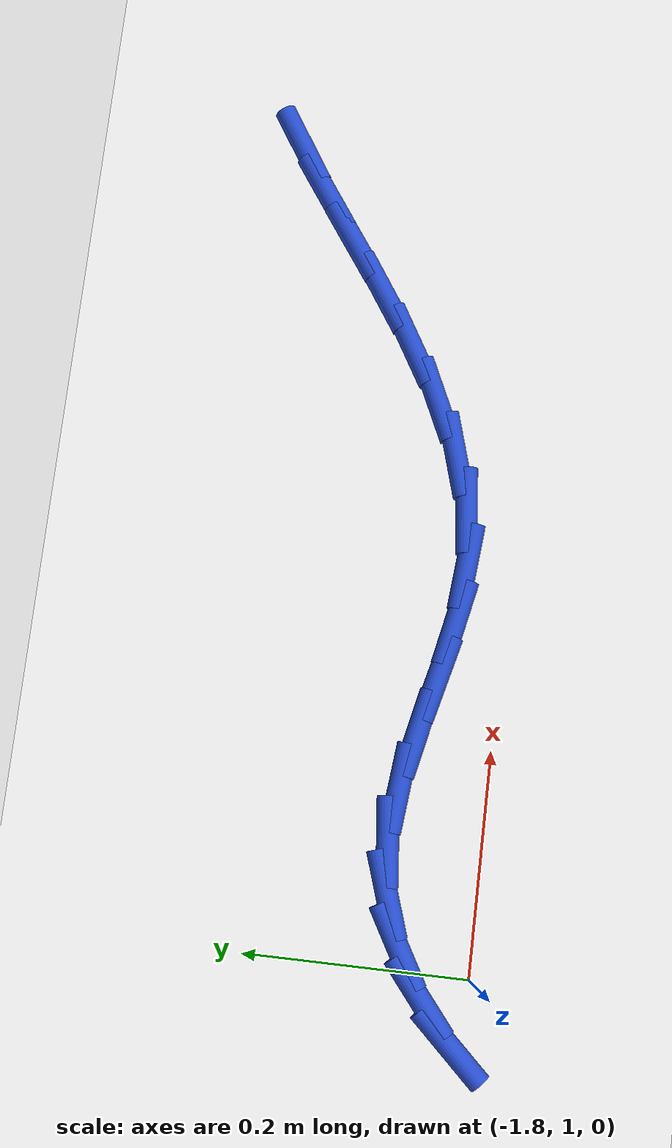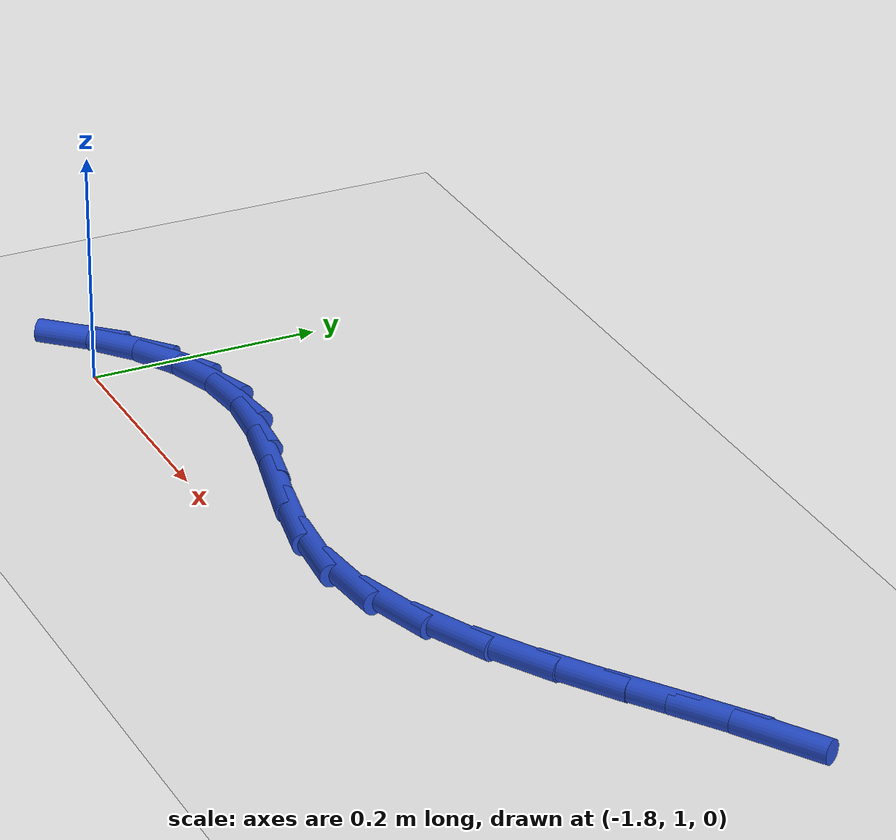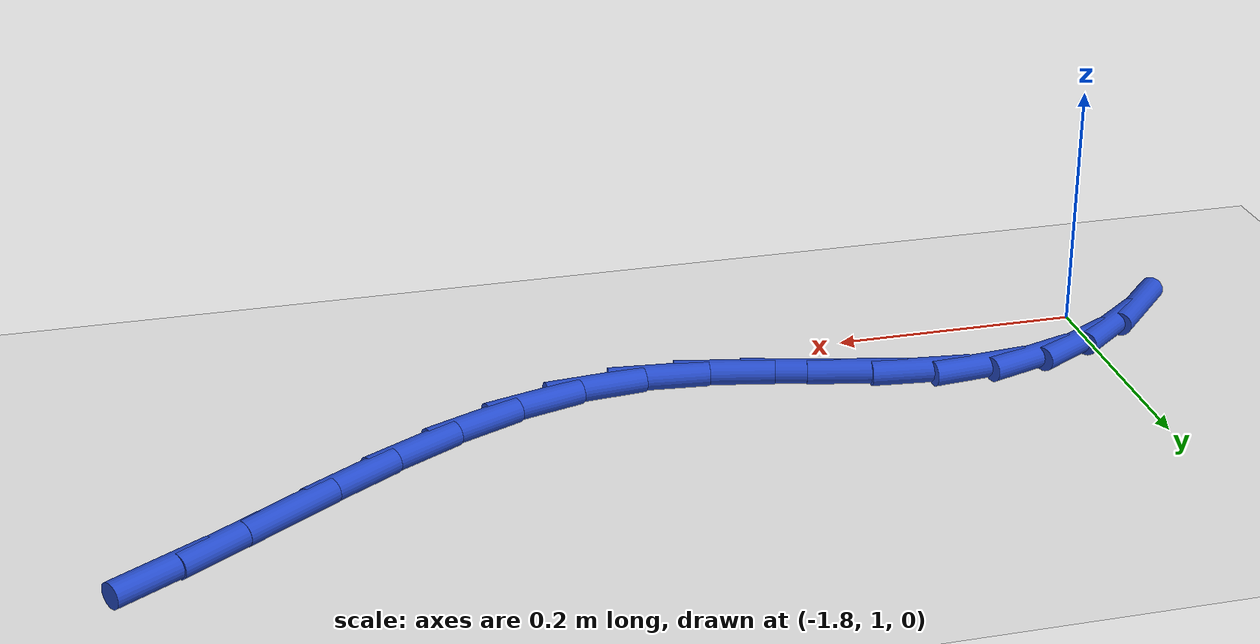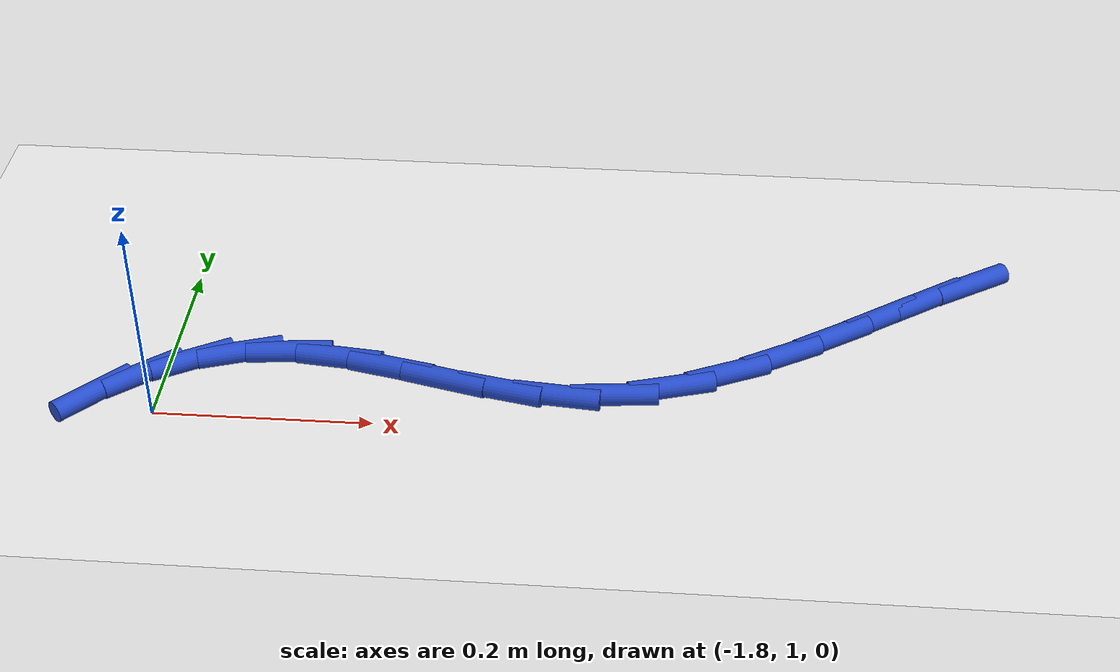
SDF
<sdf version="1.6">
 <world name="default">
  <model name="ground_plane">
   <static>1</static>
   <link name="link">
    <collision name="collision">
     <geometry><plane><normal>0 0 1</normal><size>100 100</size></plane></geometry>
     <surface><friction><ode><mu>100</mu><mu2>50</mu2></ode></friction></surface>
    </collision>
    <visual name="visual">
     <cast_shadows>0</cast_shadows>
     <geometry><plane><normal>0 0 1</normal><size>100 100</size></plane></geometry>
     <material>
      <script><uri>file://media/materials/scripts/gazebo.material</uri><name>Gazebo/WhiteGlow</name></script>
     </material>
    </visual>
   </link>
  </model>
  <model name="line">
   <link name="link_35">
    <pose>-1.0493716681372567 1.2349417479320077 0.01 0 1.57 0.5620521152027576</pose>
    <collision name="collision">
     <geometry><cylinder><radius>0.01</radius><length>0.08</length></cylinder></geometry>
    </collision>
    <visual name="visual">
     <material>
      <script><name>Gazebo/Blue</name><uri>file://media/materials/scripts/gazebo.material</uri></script>
     </material>
     <geometry><cylinder><radius>0.01</radius><length>0.08</length></cylinder></geometry>
    </visual>
   </link>
   <link name="link_36">
    <pose>-1.0931409532675855 1.2073753289773634 0.01 0 1.57 0.602964983971125</pose>
    <collision name="collision">
     <geometry><cylinder><radius>0.01</radius><length>0.08</length></cylinder></geometry>
    </collision>
    <visual name="visual">
     <material>
      <script><name>Gazebo/Blue</name><uri>file://media/materials/scripts/gazebo.material</uri></script>
     </material>
     <geometry><cylinder><radius>0.01</radius><length>0.08</length></cylinder></geometry>
    </visual>
   </link>
   <link name="link_37">
    <pose>-1.1387077722356573 1.1760026473494305 0.01 0 1.57 0.6080749728579141</pose>
    <collision name="collision">
     <geometry><cylinder><radius>0.01</radius><length>0.08</length></cylinder></geometry>
    </collision>
    <visual name="visual">
     <material>
      <script><name>Gazebo/Blue</name><uri>file://media/materials/scripts/gazebo.material</uri></script>
     </material>
     <geometry><cylinder><radius>0.01</radius><length>0.08</length></cylinder></geometry>
    </visual>
   </link>
   <link name="link_38">
    <pose>-1.1858590157959077 1.143182678661449 0.01 0 1.57 0.5816971627424746</pose>
    <collision name="collision">
     <geometry><cylinder><radius>0.01</radius><length>0.08</length></cylinder></geometry>
    </collision>
    <visual name="visual">
     <material>
      <script><name>Gazebo/Blue</name><uri>file://media/materials/scripts/gazebo.material</uri></script>
     </material>
     <geometry><cylinder><radius>0.01</radius><length>0.08</length></cylinder></geometry>
    </visual>
   </link>
   <link name="link_39">
    <pose>-1.2343815747027735 1.1112743985266587 0.01 0 1.57 0.5229103019647605</pose>
    <collision name="collision">
     <geometry><cylinder><radius>0.01</radius><length>0.08</length></cylinder></geometry>
    </collision>
    <visual name="visual">
     <material>
      <script><name>Gazebo/Blue</name><uri>file://media/materials/scripts/gazebo.material</uri></script>
     </material>
     <geometry><cylinder><radius>0.01</radius><length>0.08</length></cylinder></geometry>
    </visual>
   </link>
   <link name="link_40">
    <pose>-1.2840623397106905 1.0826367825583005 0.01 0 1.57 0.4265656241966764</pose>
    <collision name="collision">
     <geometry><cylinder><radius>0.01</radius><length>0.08</length></cylinder></geometry>
    </collision>
    <visual name="visual">
     <material>
      <script><name>Gazebo/Blue</name><uri>file://media/materials/scripts/gazebo.material</uri></script>
     </material>
     <geometry><cylinder><radius>0.01</radius><length>0.08</length></cylinder></geometry>
    </visual>
   </link>
   <link name="link_41">
    <pose>-1.3346882015740955 1.0596288063696138 0.01 0 1.57 0.28451153124987966</pose>
    <collision name="collision">
     <geometry><cylinder><radius>0.01</radius><length>0.08</length></cylinder></geometry>
    </collision>
    <visual name="visual">
     <material>
      <script><name>Gazebo/Blue</name><uri>file://media/materials/scripts/gazebo.material</uri></script>
     </material>
     <geometry><cylinder><radius>0.01</radius><length>0.08</length></cylinder></geometry>
    </visual>
   </link>
   <link name="link_42">
    <pose>-1.386046051047423 1.044609445573839 0.01 0 1.57 0.09186251432882939</pose>
    <collision name="collision">
     <geometry><cylinder><radius>0.01</radius><length>0.08</length></cylinder></geometry>
    </collision>
    <visual name="visual">
     <material>
      <script><name>Gazebo/Blue</name><uri>file://media/materials/scripts/gazebo.material</uri></script>
     </material>
     <geometry><cylinder><radius>0.01</radius><length>0.08</length></cylinder></geometry>
    </visual>
   </link>
   <link name="link_43">
    <pose>-1.437917853046733 1.0398309223089708 0.01 0 1.57 -0.09280384876174592</pose>
    <collision name="collision">
     <geometry><cylinder><radius>0.01</radius><length>0.08</length></cylinder></geometry>
    </collision>
    <visual name="visual">
     <material>
      <script><name>Gazebo/Blue</name><uri>file://media/materials/scripts/gazebo.material</uri></script>
     </material>
     <geometry><cylinder><radius>0.01</radius><length>0.08</length></cylinder></geometry>
    </visual>
   </link>
   <link name="link_44">
    <pose>-1.4899530726125396 1.0446739024218281 0.01 0 1.57 -0.20446269059833902</pose>
    <collision name="collision">
     <geometry><cylinder><radius>0.01</radius><length>0.08</length></cylinder></geometry>
    </collision>
    <visual name="visual">
     <material>
      <script><name>Gazebo/Blue</name><uri>file://media/materials/scripts/gazebo.material</uri></script>
     </material>
     <geometry><cylinder><radius>0.01</radius><length>0.08</length></cylinder></geometry>
    </visual>
   </link>
   <link name="link_45">
    <pose>-1.541657035934609 1.055395253929441 0.01 0 1.57 -0.24463790247810926</pose>
    <collision name="collision">
     <geometry><cylinder><radius>0.01</radius><length>0.08</length></cylinder></geometry>
    </collision>
    <visual name="visual">
     <material>
      <script><name>Gazebo/Blue</name><uri>file://media/materials/scripts/gazebo.material</uri></script>
     </material>
     <geometry><cylinder><radius>0.01</radius><length>0.08</length></cylinder></geometry>
    </visual>
   </link>
   <link name="link_46">
    <pose>-1.592527810395201 1.0680945309323007 0.01 0 1.57 -0.21421751918496046</pose>
    <collision name="collision">
     <geometry><cylinder><radius>0.01</radius><length>0.08</length></cylinder></geometry>
    </collision>
    <visual name="visual">
     <material>
      <script><name>Gazebo/Blue</name><uri>file://media/materials/scripts/gazebo.material</uri></script>
     </material>
     <geometry><cylinder><radius>0.01</radius><length>0.08</length></cylinder></geometry>
    </visual>
   </link>
   <link name="link_47">
    <pose>-1.6420634633765747 1.0788712875308992 0.01 0 1.57 -0.10348509432377698</pose>
    <collision name="collision">
     <geometry><cylinder><radius>0.01</radius><length>0.08</length></cylinder></geometry>
    </collision>
    <visual name="visual">
     <material>
      <script><name>Gazebo/Blue</name><uri>file://media/materials/scripts/gazebo.material</uri></script>
     </material>
     <geometry><cylinder><radius>0.01</radius><length>0.08</length></cylinder></geometry>
    </visual>
   </link>
   <link name="link_48">
    <pose>-1.689762062260991 1.0838250778257286 0.01 0 1.57 0.09554567706389125</pose>
    <collision name="collision">
     <geometry><cylinder><radius>0.01</radius><length>0.08</length></cylinder></geometry>
    </collision>
    <visual name="visual">
     <material>
      <script><name>Gazebo/Blue</name><uri>file://media/materials/scripts/gazebo.material</uri></script>
     </material>
     <geometry><cylinder><radius>0.01</radius><length>0.08</length></cylinder></geometry>
    </visual>
   </link>
   <link name="link_49">
    <pose>-1.7351596189251437 1.0794742900597543 0.01 0 1.57 0.3166772505488083</pose>
    <collision name="collision">
     <geometry><cylinder><radius>0.01</radius><length>0.08</length></cylinder></geometry>
    </collision>
    <visual name="visual">
     <material>
      <script><name>Gazebo/Blue</name><uri>file://media/materials/scripts/gazebo.material</uri></script>
     </material>
     <geometry><cylinder><radius>0.01</radius><length>0.08</length></cylinder></geometry>
    </visual>
   </link>
   <link name="link_50">
    <pose>-1.7780707052359586 1.0654120782982632 0.01 0 1.57 0.5143831275963655</pose>
    <collision name="collision">
     <geometry><cylinder><radius>0.01</radius><length>0.08</length></cylinder></geometry>
    </collision>
    <visual name="visual">
     <material>
      <script><name>Gazebo/Blue</name><uri>file://media/materials/scripts/gazebo.material</uri></script>
     </material>
     <geometry><cylinder><radius>0.01</radius><length>0.08</length></cylinder></geometry>
    </visual>
   </link>
   <link name="link_51">
    <pose>-1.8184340151005531 1.0426016648875729 0.01 0 1.57 0.6809322049603105</pose>
    <collision name="collision">
     <geometry><cylinder><radius>0.01</radius><length>0.08</length></cylinder></geometry>
    </collision>
    <visual name="visual">
     <material>
      <script><name>Gazebo/Blue</name><uri>file://media/materials/scripts/gazebo.material</uri></script>
     </material>
     <geometry><cylinder><radius>0.01</radius><length>0.08</length></cylinder></geometry>
    </visual>
   </link>
   <link name="link_52">
    <pose>-1.8561888124455113 1.01201256409113 0.01 0 1.57 0.817294119532984</pose>
    <collision name="collision">
     <geometry><cylinder><radius>0.01</radius><length>0.08</length></cylinder></geometry>
    </collision>
    <visual name="visual">
     <material>
      <script><name>Gazebo/Blue</name><uri>file://media/materials/scripts/gazebo.material</uri></script>
     </material>
     <geometry><cylinder><radius>0.01</radius><length>0.08</length></cylinder></geometry>
    </visual>
   </link>
  </model>
 </world>
</sdf>
